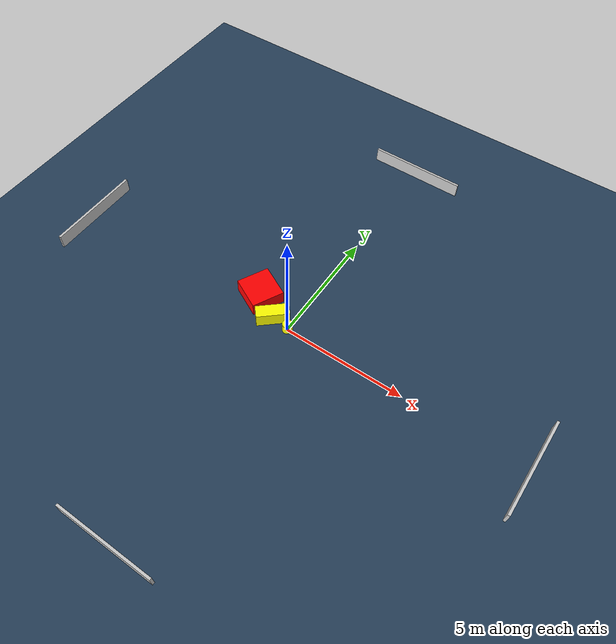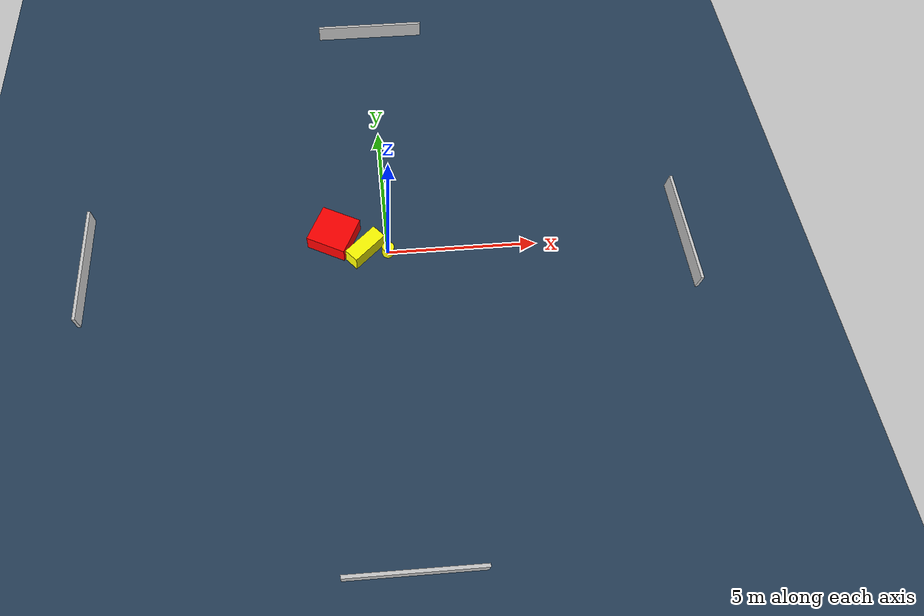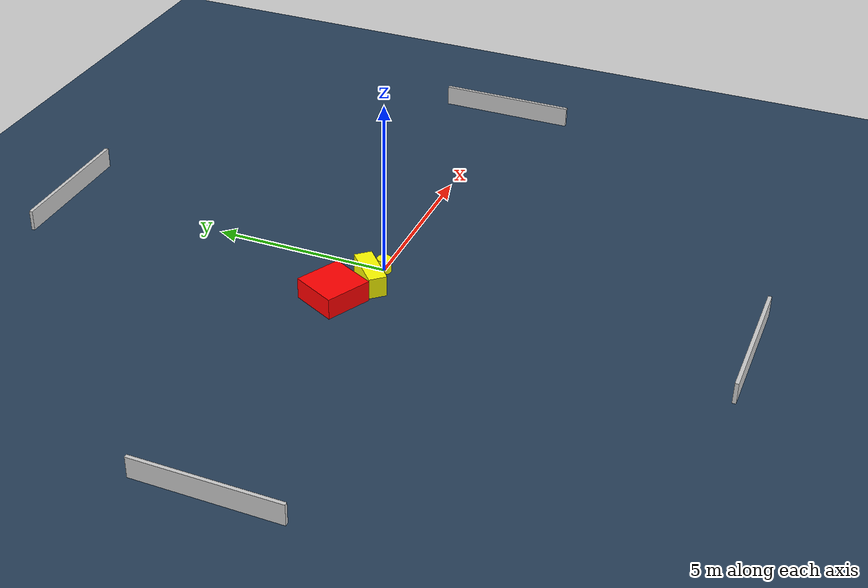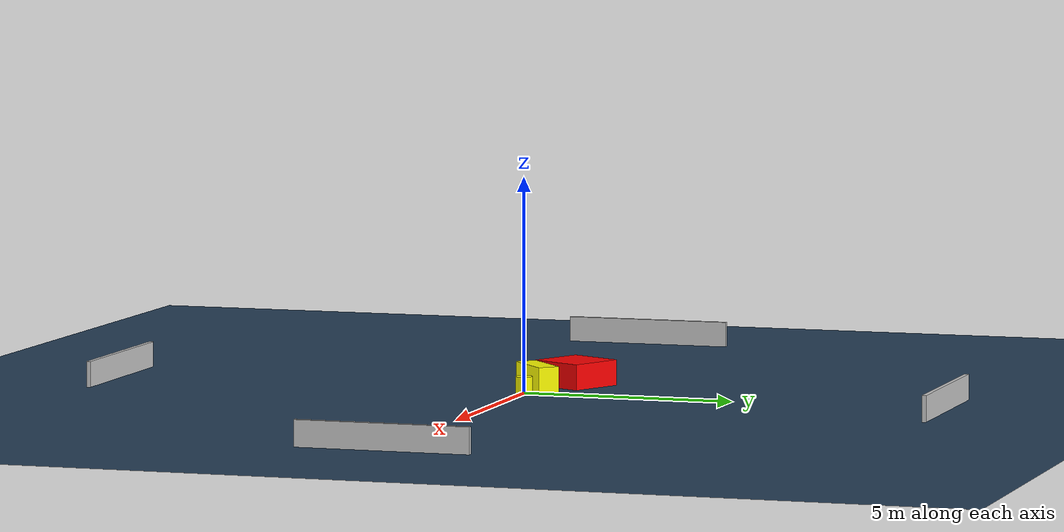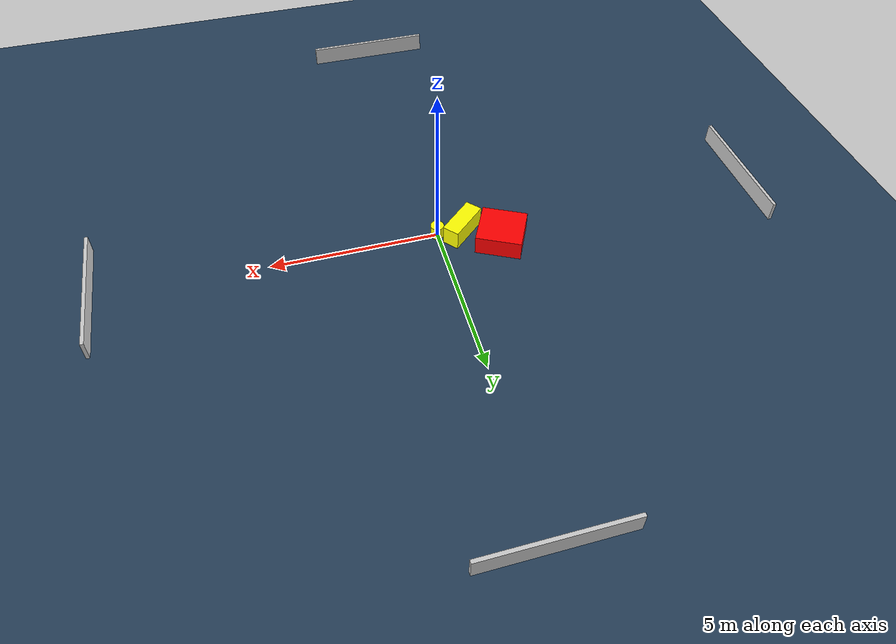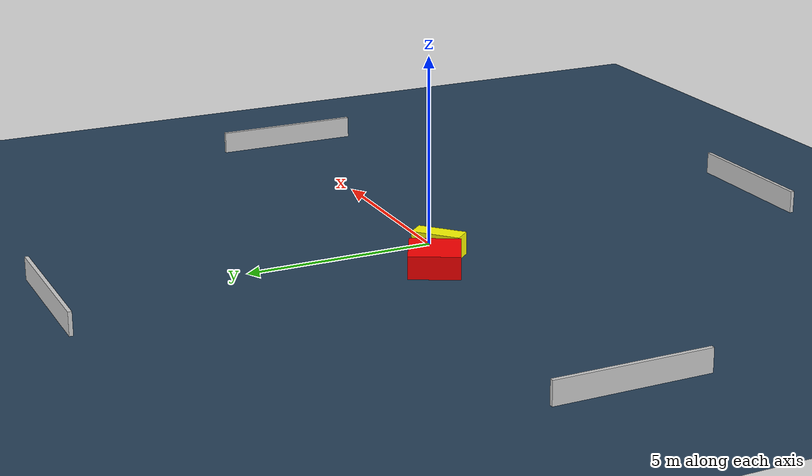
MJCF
<?xml version="1.0" ?>
<mujoco model="generated_environment">
  <option timestep="0.01" integrator="RK4" cone="elliptic"/>
  <default>
    <geom density="1"/>
  </default>
  <asset>
    <texture builtin="gradient" height="3072" name="skybox" rgb1="0.3 0.5 0.7" rgb2="0 0 0" type="skybox" width="512"/>
    <texture builtin="checker" height="300" name="groundplane" rgb1="0.2 0.3 0.4" rgb2="0.1 0.2 0.3" type="2d" width="300"/>
    <material name="groundplane" reflectance="0.2" texrepeat="5 5" texture="groundplane"/>
  </asset>
  <worldbody>
    <light dir="0 0 -1" directional="true" pos="0 0 1.5"/>
    <geom condim="3" friction="0.5 0.005 0.001" material="groundplane" name="floor" pos="0 0 0" size="0 0 0.05" type="plane"/>
    <body name="walls">
      <geom name="wall_1" condim="4" pos="-10.0 0.0 0.3" rgba="0.800000011920929 0.800000011920929 0.800000011920929 1.0" size="0.05 2.0 0.3" type="box"/>
      <geom name="wall_2" condim="4" pos="10.0 0.0 0.3" rgba="0.800000011920929 0.800000011920929 0.800000011920929 1.0" size="0.05 2.0 0.3" type="box"/>
      <geom name="wall_3" condim="4" pos="0.0 -10.0 0.3" rgba="0.800000011920929 0.800000011920929 0.800000011920929 1.0" size="2.0 0.05 0.3" type="box"/>
      <geom name="wall_4" condim="4" pos="0.0 10.0 0.3" rgba="0.800000011920929 0.800000011920929 0.800000011920929 1.0" size="2.0 0.05 0.3" type="box"/>
    </body>
    <body name="robot">
      <joint name="joint_x" type="slide" pos="0 0 0" axis="1 0 0"/>
      <joint name="joint_y" type="slide" pos="0 0 0" axis="0 1 0"/>
      <geom name="robot" type="cylinder" pos="0.0 0.0 0.2" size="0.2 0.2 0.0" mass="5.0" friction="1.0 0.005 0.0001" condim="4" rgba="1.0 1.0 0.0 1.0"/>
    </body>
    <body name="obstacle_1_movable">
      <geom name="obstacle_1_movable" condim="4" pos="-0.7531265748268573 0.08437404907653169 0.3" euler="0 0 221.58508943701568" friction="0.0 0.005 0.001" rgba="1.0 1.0 0.0 1.0" size="0.6562374626133688 0.25432919082074756 0.3" type="box" mass="0.1"/>
      <joint type="free"/>
    </body>
    <body name="obstacle_2_static">
      <geom name="obstacle_2_static" condim="4" pos="-1.776863521987442 0.7007319087641474 0.3" euler="0 0 333.2263110079795" friction="0.0 0.005 0.001" rgba="1.0 0.0 0.0 1.0" size="0.6752753479568918 0.6613225145170258 0.3" type="box"/>
    </body>
  </worldbody>
  <actuator>
    <motor name="actuator_x" joint="joint_x" gear="1" ctrlrange="-1 1"/>
    <motor name="actuator_y" joint="joint_y" gear="1" ctrlrange="-1 1"/>
  </actuator>
</mujoco>
